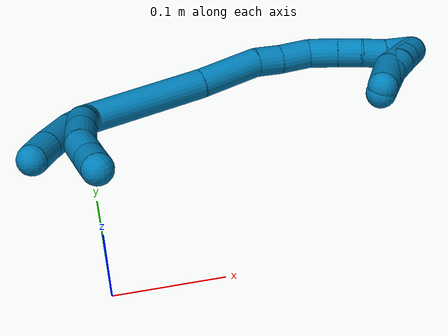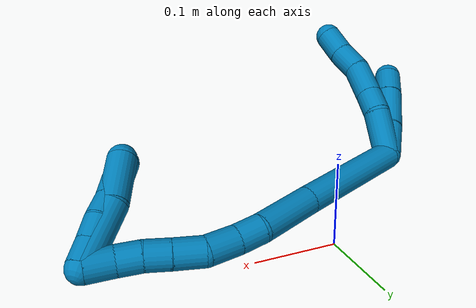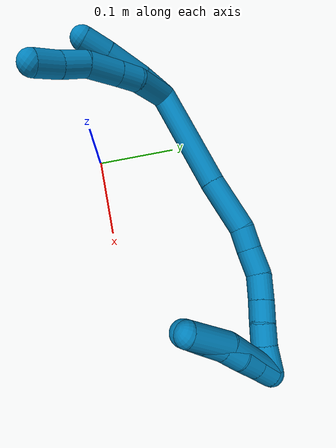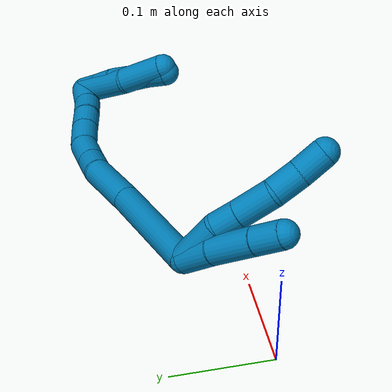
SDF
<sdf version="1.7">
 <world name="default">
  <model name="photoneo_s_sensor">
   <static>1</static>
   <pose>0 0 2 1.57079 1.57079 3.14159</pose>
   <link name="link">
    <inertial><mass>0.1</mass></inertial>
    <sensor name="sensor" type="depth">
     <update_rate>30</update_rate>
     <camera>
      <horizontal_fov>1.22</horizontal_fov>
      <image><width>1920</width><height>1200</height><format>B8G8R8</format></image>
      <clip><near>0.1</near><far>4</far></clip>
      <depth_camera><output>points</output></depth_camera>
     </camera>
     <plugin name="camera_plugin" filename="libgazebo_ros_depth_camera.so">
      <baseline>0.2</baseline>
      <alwaysOn>1</alwaysOn>
      <updateRate>0.0</updateRate>
      <cameraName>camera_ir</cameraName>
      <imageTopicName>/camera/color/image_raw</imageTopicName>
      <cameraInfoTopicName>/camera/color/camera_info</cameraInfoTopicName>
      <depthImageTopicName>/camera/depth/image_raw</depthImageTopicName>
      <depthImageCameraInfoTopicName>/camera/depth/camera_info</depthImageCameraInfoTopicName>
      <pointCloudTopicName>/camera/depth/points</pointCloudTopicName>
      <frameName>fr_optical</frameName>
      <pointCloudCutoff>0.1</pointCloudCutoff>
      <pointCloudCutoffMax>2.0</pointCloudCutoffMax>
      <distortionK1>0</distortionK1>
      <distortionK2>0</distortionK2>
      <distortionK3>0</distortionK3>
      <distortionT1>0</distortionT1>
      <distortionT2>0</distortionT2>
      <CxPrime>0</CxPrime>
      <Cx>0</Cx>
      <Cy>0</Cy>
      <focalLength>0</focalLength>
      <hackBaseline>0</hackBaseline>
     </plugin>
    </sensor>
   </link>
  </model>
  <model name="bin">
   <static>1</static>
   <link name="bottom">
    <collision name="collision-bottom">
     <pose>0 0 -0.01 0 -0 0</pose>
     <geometry><box><size>0.8 0.6 0.02</size></box></geometry>
     <surface>
      <friction><ode><mu>100</mu><mu2>100</mu2></ode></friction>
      <contact><collide_bitmask>65535</collide_bitmask></contact>
     </surface>
    </collision>
   </link>
   <link name="west_wall">
    <collision name="collision-west_wall">
     <pose>-0.41 0 0.1 0 -0 0</pose>
     <geometry><box><size>0.02 0.6 0.2</size></box></geometry>
     <surface>
      <friction><ode><mu>100</mu><mu2>100</mu2></ode></friction>
      <contact><collide_bitmask>65535</collide_bitmask></contact>
     </surface>
    </collision>
   </link>
   <link name="east_wall">
    <collision name="collision-east_wall">
     <pose>0.41 0 0.1 0 -0 0</pose>
     <geometry><box><size>0.02 0.6 0.2</size></box></geometry>
     <surface>
      <friction><ode><mu>100</mu><mu2>100</mu2></ode></friction>
      <contact><collide_bitmask>65535</collide_bitmask></contact>
     </surface>
    </collision>
   </link>
   <link name="south_wall">
    <collision name="collision-south_wall">
     <pose>0 -0.31 0.1 0 -0 0</pose>
     <geometry><box><size>0.8 0.02 0.2</size></box></geometry>
     <surface>
      <friction><ode><mu>100</mu><mu2>100</mu2></ode></friction>
      <contact><collide_bitmask>65535</collide_bitmask></contact>
     </surface>
    </collision>
   </link>
   <link name="north_wall">
    <collision name="collision-north_wall">
     <pose>0 0.31 0.1 0 -0 0</pose>
     <geometry><box><size>0.8 0.02 0.2</size></box></geometry>
     <surface>
      <friction><ode><mu>100</mu><mu2>100</mu2></ode></friction>
      <contact><collide_bitmask>65535</collide_bitmask></contact>
     </surface>
    </collision>
   </link>
  </model>
  <model name="9">
   <static>0</static>
   <link name="9">
    <collision name="collision-cylinder-e_1_2_8">
     <pose>0.00743 0.008775 0.017844 -0.457054 0.357597 -0.084022</pose>
     <geometry><cylinder><radius>0.0125</radius><length>0.042456</length></cylinder></geometry>
     <surface>
      <friction><ode><mu>1.16</mu><mu2>1.16</mu2><slip1>0</slip1><slip2>0</slip2></ode></friction>
      <contact><ode><kp>1e+06</kp><kd>1</kd><max_vel>0</max_vel><min_depth>0.001</min_depth></ode></contact>
     </surface>
    </collision>
    <visual name="visual-cylinder-e_1_2_8">
     <pose>0.00743 0.008775 0.017844 -0.457054 0.357597 -0.084022</pose>
     <geometry><cylinder><radius>0.0125</radius><length>0.042456</length></cylinder></geometry>
     <material><ambient>0 0.490196 0.709804 1</ambient></material>
    </visual>
    <collision name="collision-cylinder-e_2_8_9">
     <pose>0.019955 0.019185 0.045369 -0.167188 0.478649 -0.040884</pose>
     <geometry><cylinder><radius>0.0125</radius><length>0.022121</length></cylinder></geometry>
     <surface>
      <friction><ode><mu>1.16</mu><mu2>1.16</mu2><slip1>0</slip1><slip2>0</slip2></ode></friction>
      <contact><ode><kp>1e+06</kp><kd>1</kd><max_vel>0</max_vel><min_depth>0.001</min_depth></ode></contact>
     </surface>
    </collision>
    <visual name="visual-cylinder-e_2_8_9">
     <pose>0.019955 0.019185 0.045369 -0.167188 0.478649 -0.040884</pose>
     <geometry><cylinder><radius>0.0125</radius><length>0.022121</length></cylinder></geometry>
     <material><ambient>0 0.490196 0.709804 1</ambient></material>
    </visual>
    <collision name="collision-cylinder-e_3_9_10">
     <pose>0.033194 0.023503 0.069431 -0.184572 0.50799 -0.048042</pose>
     <geometry><cylinder><radius>0.0125</radius><length>0.033487</length></cylinder></geometry>
     <surface>
      <friction><ode><mu>1.16</mu><mu2>1.16</mu2><slip1>0</slip1><slip2>0</slip2></ode></friction>
      <contact><ode><kp>1e+06</kp><kd>1</kd><max_vel>0</max_vel><min_depth>0.001</min_depth></ode></contact>
     </surface>
    </collision>
    <visual name="visual-cylinder-e_3_9_10">
     <pose>0.033194 0.023503 0.069431 -0.184572 0.50799 -0.048042</pose>
     <geometry><cylinder><radius>0.0125</radius><length>0.033487</length></cylinder></geometry>
     <material><ambient>0 0.490196 0.709804 1</ambient></material>
    </visual>
    <collision name="collision-cylinder-e_4_10_11">
     <pose>0.05071 0.027811 0.092692 -0.180699 0.804069 -0.077004</pose>
     <geometry><cylinder><radius>0.0125</radius><length>0.026024</length></cylinder></geometry>
     <surface>
      <friction><ode><mu>1.16</mu><mu2>1.16</mu2><slip1>0</slip1><slip2>0</slip2></ode></friction>
      <contact><ode><kp>1e+06</kp><kd>1</kd><max_vel>0</max_vel><min_depth>0.001</min_depth></ode></contact>
     </surface>
    </collision>
    <visual name="visual-cylinder-e_4_10_11">
     <pose>0.05071 0.027811 0.092692 -0.180699 0.804069 -0.077004</pose>
     <geometry><cylinder><radius>0.0125</radius><length>0.026024</length></cylinder></geometry>
     <material><ambient>0 0.490196 0.709804 1</ambient></material>
    </visual>
    <collision name="collision-cylinder-e_5_11_6">
     <pose>0.068559 0.032361 0.110921 -0.303541 0.713375 -0.11386</pose>
     <geometry><cylinder><radius>0.0125</radius><length>0.025911</length></cylinder></geometry>
     <surface>
      <friction><ode><mu>1.16</mu><mu2>1.16</mu2><slip1>0</slip1><slip2>0</slip2></ode></friction>
      <contact><ode><kp>1e+06</kp><kd>1</kd><max_vel>0</max_vel><min_depth>0.001</min_depth></ode></contact>
     </surface>
    </collision>
    <visual name="visual-cylinder-e_5_11_6">
     <pose>0.068559 0.032361 0.110921 -0.303541 0.713375 -0.11386</pose>
     <geometry><cylinder><radius>0.0125</radius><length>0.025911</length></cylinder></geometry>
     <material><ambient>0 0.490196 0.709804 1</ambient></material>
    </visual>
    <collision name="collision-cylinder-e_1_2_12">
     <pose>0.001199 0.001834 0.015868 -0.115086 0.074912 -0.004317</pose>
     <geometry><cylinder><radius>0.0125</radius><length>0.032037</length></cylinder></geometry>
     <surface>
      <friction><ode><mu>1.16</mu><mu2>1.16</mu2><slip1>0</slip1><slip2>0</slip2></ode></friction>
      <contact><ode><kp>1e+06</kp><kd>1</kd><max_vel>0</max_vel><min_depth>0.001</min_depth></ode></contact>
     </surface>
    </collision>
    <visual name="visual-cylinder-e_1_2_12">
     <pose>0.001199 0.001834 0.015868 -0.115086 0.074912 -0.004317</pose>
     <geometry><cylinder><radius>0.0125</radius><length>0.032037</length></cylinder></geometry>
     <material><ambient>0 0.490196 0.709804 1</ambient></material>
    </visual>
    <collision name="collision-cylinder-e_2_12_13">
     <pose>0.004975 0.004442 0.052359 -0.037494 0.124249 -0.002333</pose>
     <geometry><cylinder><radius>0.0125</radius><length>0.041597</length></cylinder></geometry>
     <surface>
      <friction><ode><mu>1.16</mu><mu2>1.16</mu2><slip1>0</slip1><slip2>0</slip2></ode></friction>
      <contact><ode><kp>1e+06</kp><kd>1</kd><max_vel>0</max_vel><min_depth>0.001</min_depth></ode></contact>
     </surface>
    </collision>
    <visual name="visual-cylinder-e_2_12_13">
     <pose>0.004975 0.004442 0.052359 -0.037494 0.124249 -0.002333</pose>
     <geometry><cylinder><radius>0.0125</radius><length>0.041597</length></cylinder></geometry>
     <material><ambient>0 0.490196 0.709804 1</ambient></material>
    </visual>
    <collision name="collision-cylinder-e_3_13_5">
     <pose>0.009792 0.005307 0.085974 -0.006983 0.170711 -0.000597</pose>
     <geometry><cylinder><radius>0.0125</radius><length>0.026366</length></cylinder></geometry>
     <surface>
      <friction><ode><mu>1.16</mu><mu2>1.16</mu2><slip1>0</slip1><slip2>0</slip2></ode></friction>
      <contact><ode><kp>1e+06</kp><kd>1</kd><max_vel>0</max_vel><min_depth>0.001</min_depth></ode></contact>
     </surface>
    </collision>
    <visual name="visual-cylinder-e_3_13_5">
     <pose>0.009792 0.005307 0.085974 -0.006983 0.170711 -0.000597</pose>
     <geometry><cylinder><radius>0.0125</radius><length>0.026366</length></cylinder></geometry>
     <material><ambient>0 0.490196 0.709804 1</ambient></material>
    </visual>
    <collision name="collision-cylinder-e_1_2_14">
     <pose>0.028528 0.015155 -0.041811 -2.79385 0.570353 -2.06205</pose>
     <geometry><cylinder><radius>0.0125</radius><length>0.105673</length></cylinder></geometry>
     <surface>
      <friction><ode><mu>1.16</mu><mu2>1.16</mu2><slip1>0</slip1><slip2>0</slip2></ode></friction>
      <contact><ode><kp>1e+06</kp><kd>1</kd><max_vel>0</max_vel><min_depth>0.001</min_depth></ode></contact>
     </surface>
    </collision>
    <visual name="visual-cylinder-e_1_2_14">
     <pose>0.028528 0.015155 -0.041811 -2.79385 0.570353 -2.06205</pose>
     <geometry><cylinder><radius>0.0125</radius><length>0.105673</length></cylinder></geometry>
     <material><ambient>0 0.490196 0.709804 1</ambient></material>
    </visual>
    <collision name="collision-cylinder-e_2_14_15">
     <pose>0.070573 0.039222 -0.105692 -2.75782 0.516475 -1.87326</pose>
     <geometry><cylinder><radius>0.0125</radius><length>0.054744</length></cylinder></geometry>
     <surface>
      <friction><ode><mu>1.16</mu><mu2>1.16</mu2><slip1>0</slip1><slip2>0</slip2></ode></friction>
      <contact><ode><kp>1e+06</kp><kd>1</kd><max_vel>0</max_vel><min_depth>0.001</min_depth></ode></contact>
     </surface>
    </collision>
    <visual name="visual-cylinder-e_2_14_15">
     <pose>0.070573 0.039222 -0.105692 -2.75782 0.516475 -1.87326</pose>
     <geometry><cylinder><radius>0.0125</radius><length>0.054744</length></cylinder></geometry>
     <material><ambient>0 0.490196 0.709804 1</ambient></material>
    </visual>
    <collision name="collision-cylinder-e_3_15_16">
     <pose>0.091662 0.050205 -0.135766 -2.88839 0.741619 -2.50884</pose>
     <geometry><cylinder><radius>0.0125</radius><length>0.022421</length></cylinder></geometry>
     <surface>
      <friction><ode><mu>1.16</mu><mu2>1.16</mu2><slip1>0</slip1><slip2>0</slip2></ode></friction>
      <contact><ode><kp>1e+06</kp><kd>1</kd><max_vel>0</max_vel><min_depth>0.001</min_depth></ode></contact>
     </surface>
    </collision>
    <visual name="visual-cylinder-e_3_15_16">
     <pose>0.091662 0.050205 -0.135766 -2.88839 0.741619 -2.50884</pose>
     <geometry><cylinder><radius>0.0125</radius><length>0.022421</length></cylinder></geometry>
     <material><ambient>0 0.490196 0.709804 1</ambient></material>
    </visual>
    <collision name="collision-cylinder-e_4_16_17">
     <pose>0.108263 0.056148 -0.152874 -2.73946 0.739612 -2.17345</pose>
     <geometry><cylinder><radius>0.0125</radius><length>0.02679</length></cylinder></geometry>
     <surface>
      <friction><ode><mu>1.16</mu><mu2>1.16</mu2><slip1>0</slip1><slip2>0</slip2></ode></friction>
      <contact><ode><kp>1e+06</kp><kd>1</kd><max_vel>0</max_vel><min_depth>0.001</min_depth></ode></contact>
     </surface>
    </collision>
    <visual name="visual-cylinder-e_4_16_17">
     <pose>0.108263 0.056148 -0.152874 -2.73946 0.739612 -2.17345</pose>
     <geometry><cylinder><radius>0.0125</radius><length>0.02679</length></cylinder></geometry>
     <material><ambient>0 0.490196 0.709804 1</ambient></material>
    </visual>
    <collision name="collision-cylinder-e_5_17_18">
     <pose>0.128356 0.063347 -0.167223 -2.57635 1.05949 -2.22085</pose>
     <geometry><cylinder><radius>0.0125</radius><length>0.025376</length></cylinder></geometry>
     <surface>
      <friction><ode><mu>1.16</mu><mu2>1.16</mu2><slip1>0</slip1><slip2>0</slip2></ode></friction>
      <contact><ode><kp>1e+06</kp><kd>1</kd><max_vel>0</max_vel><min_depth>0.001</min_depth></ode></contact>
     </surface>
    </collision>
    <visual name="visual-cylinder-e_5_17_18">
     <pose>0.128356 0.063347 -0.167223 -2.57635 1.05949 -2.22085</pose>
     <geometry><cylinder><radius>0.0125</radius><length>0.025376</length></cylinder></geometry>
     <material><ambient>0 0.490196 0.709804 1</ambient></material>
    </visual>
    <collision name="collision-cylinder-e_6_18_19">
     <pose>0.148684 0.069237 -0.176383 -2.56179 1.10272 -2.23834</pose>
     <geometry><cylinder><radius>0.0125</radius><length>0.020757</length></cylinder></geometry>
     <surface>
      <friction><ode><mu>1.16</mu><mu2>1.16</mu2><slip1>0</slip1><slip2>0</slip2></ode></friction>
      <contact><ode><kp>1e+06</kp><kd>1</kd><max_vel>0</max_vel><min_depth>0.001</min_depth></ode></contact>
     </surface>
    </collision>
    <visual name="visual-cylinder-e_6_18_19">
     <pose>0.148684 0.069237 -0.176383 -2.56179 1.10272 -2.23834</pose>
     <geometry><cylinder><radius>0.0125</radius><length>0.020757</length></cylinder></geometry>
     <material><ambient>0 0.490196 0.709804 1</ambient></material>
    </visual>
    <collision name="collision-cylinder-e_7_19_20">
     <pose>0.16674 0.073552 -0.185103 -2.79221 1.04428 -2.54636</pose>
     <geometry><cylinder><radius>0.0125</radius><length>0.020343</length></cylinder></geometry>
     <surface>
      <friction><ode><mu>1.16</mu><mu2>1.16</mu2><slip1>0</slip1><slip2>0</slip2></ode></friction>
      <contact><ode><kp>1e+06</kp><kd>1</kd><max_vel>0</max_vel><min_depth>0.001</min_depth></ode></contact>
     </surface>
    </collision>
    <visual name="visual-cylinder-e_7_19_20">
     <pose>0.16674 0.073552 -0.185103 -2.79221 1.04428 -2.54636</pose>
     <geometry><cylinder><radius>0.0125</radius><length>0.020343</length></cylinder></geometry>
     <material><ambient>0 0.490196 0.709804 1</ambient></material>
    </visual>
    <collision name="collision-cylinder-e_8_20_1">
     <pose>0.184993 0.078618 -0.196408 -2.66997 0.913585 -2.23212</pose>
     <geometry><cylinder><radius>0.0125</radius><length>0.023896</length></cylinder></geometry>
     <surface>
      <friction><ode><mu>1.16</mu><mu2>1.16</mu2><slip1>0</slip1><slip2>0</slip2></ode></friction>
      <contact><ode><kp>1e+06</kp><kd>1</kd><max_vel>0</max_vel><min_depth>0.001</min_depth></ode></contact>
     </surface>
    </collision>
    <visual name="visual-cylinder-e_8_20_1">
     <pose>0.184993 0.078618 -0.196408 -2.66997 0.913585 -2.23212</pose>
     <geometry><cylinder><radius>0.0125</radius><length>0.023896</length></cylinder></geometry>
     <material><ambient>0 0.490196 0.709804 1</ambient></material>
    </visual>
    <collision name="collision-cylinder-e_1_1_21">
     <pose>0.194921 0.08221 -0.192925 -0.027553 0.046885 -0.000646</pose>
     <geometry><cylinder><radius>0.0125</radius><length>0.02</length></cylinder></geometry>
     <surface>
      <friction><ode><mu>1.16</mu><mu2>1.16</mu2><slip1>0</slip1><slip2>0</slip2></ode></friction>
      <contact><ode><kp>1e+06</kp><kd>1</kd><max_vel>0</max_vel><min_depth>0.001</min_depth></ode></contact>
     </surface>
    </collision>
    <visual name="visual-cylinder-e_1_1_21">
     <pose>0.194921 0.08221 -0.192925 -0.027553 0.046885 -0.000646</pose>
     <geometry><cylinder><radius>0.0125</radius><length>0.02</length></cylinder></geometry>
     <material><ambient>0 0.490196 0.709804 1</ambient></material>
    </visual>
    <collision name="collision-cylinder-e_2_21_22">
     <pose>0.196164 0.083034 -0.172985 -0.055079 0.07755 -0.002137</pose>
     <geometry><cylinder><radius>0.0125</radius><length>0.02</length></cylinder></geometry>
     <surface>
      <friction><ode><mu>1.16</mu><mu2>1.16</mu2><slip1>0</slip1><slip2>0</slip2></ode></friction>
      <contact><ode><kp>1e+06</kp><kd>1</kd><max_vel>0</max_vel><min_depth>0.001</min_depth></ode></contact>
     </surface>
    </collision>
    <visual name="visual-cylinder-e_2_21_22">
     <pose>0.196164 0.083034 -0.172985 -0.055079 0.07755 -0.002137</pose>
     <geometry><cylinder><radius>0.0125</radius><length>0.02</length></cylinder></geometry>
     <material><ambient>0 0.490196 0.709804 1</ambient></material>
    </visual>
    <collision name="collision-cylinder-e_3_22_23">
     <pose>0.197265 0.082721 -0.153073 0.086311 0.032585 0.001407</pose>
     <geometry><cylinder><radius>0.0125</radius><length>0.02</length></cylinder></geometry>
     <surface>
      <friction><ode><mu>1.16</mu><mu2>1.16</mu2><slip1>0</slip1><slip2>0</slip2></ode></friction>
      <contact><ode><kp>1e+06</kp><kd>1</kd><max_vel>0</max_vel><min_depth>0.001</min_depth></ode></contact>
     </surface>
    </collision>
    <visual name="visual-cylinder-e_3_22_23">
     <pose>0.197265 0.082721 -0.153073 0.086311 0.032585 0.001407</pose>
     <geometry><cylinder><radius>0.0125</radius><length>0.02</length></cylinder></geometry>
     <material><ambient>0 0.490196 0.709804 1</ambient></material>
    </visual>
    <collision name="collision-cylinder-e_4_23_24">
     <pose>0.199368 0.081056 -0.133307 0.081707 0.178659 0.007322</pose>
     <geometry><cylinder><radius>0.0125</radius><length>0.02</length></cylinder></geometry>
     <surface>
      <friction><ode><mu>1.16</mu><mu2>1.16</mu2><slip1>0</slip1><slip2>0</slip2></ode></friction>
      <contact><ode><kp>1e+06</kp><kd>1</kd><max_vel>0</max_vel><min_depth>0.001</min_depth></ode></contact>
     </surface>
    </collision>
    <visual name="visual-cylinder-e_4_23_24">
     <pose>0.199368 0.081056 -0.133307 0.081707 0.178659 0.007322</pose>
     <geometry><cylinder><radius>0.0125</radius><length>0.02</length></cylinder></geometry>
     <material><ambient>0 0.490196 0.709804 1</ambient></material>
    </visual>
    <collision name="collision-cylinder-e_5_24_4">
     <pose>0.202789 0.07859 -0.113777 0.169422 0.16517 0.014057</pose>
     <geometry><cylinder><radius>0.0125</radius><length>0.02</length></cylinder></geometry>
     <surface>
      <friction><ode><mu>1.16</mu><mu2>1.16</mu2><slip1>0</slip1><slip2>0</slip2></ode></friction>
      <contact><ode><kp>1e+06</kp><kd>1</kd><max_vel>0</max_vel><min_depth>0.001</min_depth></ode></contact>
     </surface>
    </collision>
    <visual name="visual-cylinder-e_5_24_4">
     <pose>0.202789 0.07859 -0.113777 0.169422 0.16517 0.014057</pose>
     <geometry><cylinder><radius>0.0125</radius><length>0.02</length></cylinder></geometry>
     <material><ambient>0 0.490196 0.709804 1</ambient></material>
    </visual>
    <collision name="collision-cylinder-e_1_1_25">
     <pose>0.194061 0.082229 -0.17483 -0.01047 -0.013921 7.3e-05</pose>
     <geometry><cylinder><radius>0.0125</radius><length>0.05617</length></cylinder></geometry>
     <surface>
      <friction><ode><mu>1.16</mu><mu2>1.16</mu2><slip1>0</slip1><slip2>0</slip2></ode></friction>
      <contact><ode><kp>1e+06</kp><kd>1</kd><max_vel>0</max_vel><min_depth>0.001</min_depth></ode></contact>
     </surface>
    </collision>
    <visual name="visual-cylinder-e_1_1_25">
     <pose>0.194061 0.082229 -0.17483 -0.01047 -0.013921 7.3e-05</pose>
     <geometry><cylinder><radius>0.0125</radius><length>0.05617</length></cylinder></geometry>
     <material><ambient>0 0.490196 0.709804 1</ambient></material>
    </visual>
    <collision name="collision-cylinder-e_2_25_3">
     <pose>0.198949 0.08268 -0.12548 -0.007386 0.24325 -0.000903</pose>
     <geometry><cylinder><radius>0.0125</radius><length>0.04383</length></cylinder></geometry>
     <surface>
      <friction><ode><mu>1.16</mu><mu2>1.16</mu2><slip1>0</slip1><slip2>0</slip2></ode></friction>
      <contact><ode><kp>1e+06</kp><kd>1</kd><max_vel>0</max_vel><min_depth>0.001</min_depth></ode></contact>
     </surface>
    </collision>
    <visual name="visual-cylinder-e_2_25_3">
     <pose>0.198949 0.08268 -0.12548 -0.007386 0.24325 -0.000903</pose>
     <geometry><cylinder><radius>0.0125</radius><length>0.04383</length></cylinder></geometry>
     <material><ambient>0 0.490196 0.709804 1</ambient></material>
    </visual>
    <collision name="collision-sphere-3">
     <pose>0.204227 0.082837 -0.10421 0 -0 0</pose>
     <geometry><sphere><radius>0.0125</radius></sphere></geometry>
     <surface>
      <friction><ode><mu>1.16</mu><mu2>1.16</mu2><slip1>0</slip1><slip2>0</slip2></ode></friction>
      <contact><ode><kp>1e+06</kp><kd>1</kd><max_vel>0</max_vel><min_depth>0.001</min_depth></ode></contact>
     </surface>
    </collision>
    <visual name="visual-sphere-3">
     <pose>0.204227 0.082837 -0.10421 0 -0 0</pose>
     <geometry><sphere><radius>0.0125</radius></sphere></geometry>
     <material><ambient>0 0.490196 0.709804 1</ambient></material>
    </visual>
    <collision name="collision-sphere-25">
     <pose>0.19367 0.082523 -0.146749 0 -0 0</pose>
     <geometry><sphere><radius>0.0125</radius></sphere></geometry>
     <surface>
      <friction><ode><mu>1.16</mu><mu2>1.16</mu2><slip1>0</slip1><slip2>0</slip2></ode></friction>
      <contact><ode><kp>1e+06</kp><kd>1</kd><max_vel>0</max_vel><min_depth>0.001</min_depth></ode></contact>
     </surface>
    </collision>
    <visual name="visual-sphere-25">
     <pose>0.19367 0.082523 -0.146749 0 -0 0</pose>
     <geometry><sphere><radius>0.0125</radius></sphere></geometry>
     <material><ambient>0 0.490196 0.709804 1</ambient></material>
    </visual>
    <collision name="collision-sphere-4">
     <pose>0.204433 0.076927 -0.104054 0 -0 0</pose>
     <geometry><sphere><radius>0.0125</radius></sphere></geometry>
     <surface>
      <friction><ode><mu>1.16</mu><mu2>1.16</mu2><slip1>0</slip1><slip2>0</slip2></ode></friction>
      <contact><ode><kp>1e+06</kp><kd>1</kd><max_vel>0</max_vel><min_depth>0.001</min_depth></ode></contact>
     </surface>
    </collision>
    <visual name="visual-sphere-4">
     <pose>0.204433 0.076927 -0.104054 0 -0 0</pose>
     <geometry><sphere><radius>0.0125</radius></sphere></geometry>
     <material><ambient>0 0.490196 0.709804 1</ambient></material>
    </visual>
    <collision name="collision-sphere-24">
     <pose>0.201145 0.080253 -0.123499 0 -0 0</pose>
     <geometry><sphere><radius>0.0125</radius></sphere></geometry>
     <surface>
      <friction><ode><mu>1.16</mu><mu2>1.16</mu2><slip1>0</slip1><slip2>0</slip2></ode></friction>
      <contact><ode><kp>1e+06</kp><kd>1</kd><max_vel>0</max_vel><min_depth>0.001</min_depth></ode></contact>
     </surface>
    </collision>
    <visual name="visual-sphere-24">
     <pose>0.201145 0.080253 -0.123499 0 -0 0</pose>
     <geometry><sphere><radius>0.0125</radius></sphere></geometry>
     <material><ambient>0 0.490196 0.709804 1</ambient></material>
    </visual>
    <collision name="collision-sphere-23">
     <pose>0.197591 0.081859 -0.143115 0 -0 0</pose>
     <geometry><sphere><radius>0.0125</radius></sphere></geometry>
     <surface>
      <friction><ode><mu>1.16</mu><mu2>1.16</mu2><slip1>0</slip1><slip2>0</slip2></ode></friction>
      <contact><ode><kp>1e+06</kp><kd>1</kd><max_vel>0</max_vel><min_depth>0.001</min_depth></ode></contact>
     </surface>
    </collision>
    <visual name="visual-sphere-23">
     <pose>0.197591 0.081859 -0.143115 0 -0 0</pose>
     <geometry><sphere><radius>0.0125</radius></sphere></geometry>
     <material><ambient>0 0.490196 0.709804 1</ambient></material>
    </visual>
    <collision name="collision-sphere-22">
     <pose>0.196939 0.083583 -0.16303 0 -0 0</pose>
     <geometry><sphere><radius>0.0125</radius></sphere></geometry>
     <surface>
      <friction><ode><mu>1.16</mu><mu2>1.16</mu2><slip1>0</slip1><slip2>0</slip2></ode></friction>
      <contact><ode><kp>1e+06</kp><kd>1</kd><max_vel>0</max_vel><min_depth>0.001</min_depth></ode></contact>
     </surface>
    </collision>
    <visual name="visual-sphere-22">
     <pose>0.196939 0.083583 -0.16303 0 -0 0</pose>
     <geometry><sphere><radius>0.0125</radius></sphere></geometry>
     <material><ambient>0 0.490196 0.709804 1</ambient></material>
    </visual>
    <collision name="collision-sphere-21">
     <pose>0.19539 0.082485 -0.18294 0 -0 0</pose>
     <geometry><sphere><radius>0.0125</radius></sphere></geometry>
     <surface>
      <friction><ode><mu>1.16</mu><mu2>1.16</mu2><slip1>0</slip1><slip2>0</slip2></ode></friction>
      <contact><ode><kp>1e+06</kp><kd>1</kd><max_vel>0</max_vel><min_depth>0.001</min_depth></ode></contact>
     </surface>
    </collision>
    <visual name="visual-sphere-21">
     <pose>0.19539 0.082485 -0.18294 0 -0 0</pose>
     <geometry><sphere><radius>0.0125</radius></sphere></geometry>
     <material><ambient>0 0.490196 0.709804 1</ambient></material>
    </visual>
    <collision name="collision-sphere-1">
     <pose>0.194452 0.081935 -0.20291 0 -0 0</pose>
     <geometry><sphere><radius>0.0125</radius></sphere></geometry>
     <surface>
      <friction><ode><mu>1.16</mu><mu2>1.16</mu2><slip1>0</slip1><slip2>0</slip2></ode></friction>
      <contact><ode><kp>1e+06</kp><kd>1</kd><max_vel>0</max_vel><min_depth>0.001</min_depth></ode></contact>
     </surface>
    </collision>
    <visual name="visual-sphere-1">
     <pose>0.194452 0.081935 -0.20291 0 -0 0</pose>
     <geometry><sphere><radius>0.0125</radius></sphere></geometry>
     <material><ambient>0 0.490196 0.709804 1</ambient></material>
    </visual>
    <collision name="collision-sphere-6">
     <pose>0.077036 0.035289 0.12027 0 -0 0</pose>
     <geometry><sphere><radius>0.0125</radius></sphere></geometry>
     <surface>
      <friction><ode><mu>1.16</mu><mu2>1.16</mu2><slip1>0</slip1><slip2>0</slip2></ode></friction>
      <contact><ode><kp>1e+06</kp><kd>1</kd><max_vel>0</max_vel><min_depth>0.001</min_depth></ode></contact>
     </surface>
    </collision>
    <visual name="visual-sphere-6">
     <pose>0.077036 0.035289 0.12027 0 -0 0</pose>
     <geometry><sphere><radius>0.0125</radius></sphere></geometry>
     <material><ambient>0 0.490196 0.709804 1</ambient></material>
    </visual>
    <collision name="collision-sphere-11">
     <pose>0.060081 0.029433 0.101573 0 -0 0</pose>
     <geometry><sphere><radius>0.0125</radius></sphere></geometry>
     <surface>
      <friction><ode><mu>1.16</mu><mu2>1.16</mu2><slip1>0</slip1><slip2>0</slip2></ode></friction>
      <contact><ode><kp>1e+06</kp><kd>1</kd><max_vel>0</max_vel><min_depth>0.001</min_depth></ode></contact>
     </surface>
    </collision>
    <visual name="visual-sphere-11">
     <pose>0.060081 0.029433 0.101573 0 -0 0</pose>
     <geometry><sphere><radius>0.0125</radius></sphere></geometry>
     <material><ambient>0 0.490196 0.709804 1</ambient></material>
    </visual>
    <collision name="collision-sphere-10">
     <pose>0.041338 0.026188 0.083812 0 -0 0</pose>
     <geometry><sphere><radius>0.0125</radius></sphere></geometry>
     <surface>
      <friction><ode><mu>1.16</mu><mu2>1.16</mu2><slip1>0</slip1><slip2>0</slip2></ode></friction>
      <contact><ode><kp>1e+06</kp><kd>1</kd><max_vel>0</max_vel><min_depth>0.001</min_depth></ode></contact>
     </surface>
    </collision>
    <visual name="visual-sphere-10">
     <pose>0.041338 0.026188 0.083812 0 -0 0</pose>
     <geometry><sphere><radius>0.0125</radius></sphere></geometry>
     <material><ambient>0 0.490196 0.709804 1</ambient></material>
    </visual>
    <collision name="collision-sphere-9">
     <pose>0.025049 0.020818 0.05505 0 -0 0</pose>
     <geometry><sphere><radius>0.0125</radius></sphere></geometry>
     <surface>
      <friction><ode><mu>1.16</mu><mu2>1.16</mu2><slip1>0</slip1><slip2>0</slip2></ode></friction>
      <contact><ode><kp>1e+06</kp><kd>1</kd><max_vel>0</max_vel><min_depth>0.001</min_depth></ode></contact>
     </surface>
    </collision>
    <visual name="visual-sphere-9">
     <pose>0.025049 0.020818 0.05505 0 -0 0</pose>
     <geometry><sphere><radius>0.0125</radius></sphere></geometry>
     <material><ambient>0 0.490196 0.709804 1</ambient></material>
    </visual>
    <collision name="collision-sphere-2">
     <geometry><sphere><radius>0.0125</radius></sphere></geometry>
     <surface>
      <friction><ode><mu>1.16</mu><mu2>1.16</mu2><slip1>0</slip1><slip2>0</slip2></ode></friction>
      <contact><ode><kp>1e+06</kp><kd>1</kd><max_vel>0</max_vel><min_depth>0.001</min_depth></ode></contact>
     </surface>
    </collision>
    <visual name="visual-sphere-2">
     <geometry><sphere><radius>0.0125</radius></sphere></geometry>
     <material><ambient>0 0.490196 0.709804 1</ambient></material>
    </visual>
    <collision name="collision-sphere-19">
     <pose>0.157946 0.071803 -0.1803 0 -0 0</pose>
     <geometry><sphere><radius>0.0125</radius></sphere></geometry>
     <surface>
      <friction><ode><mu>1.16</mu><mu2>1.16</mu2><slip1>0</slip1><slip2>0</slip2></ode></friction>
      <contact><ode><kp>1e+06</kp><kd>1</kd><max_vel>0</max_vel><min_depth>0.001</min_depth></ode></contact>
     </surface>
    </collision>
    <visual name="visual-sphere-19">
     <pose>0.157946 0.071803 -0.1803 0 -0 0</pose>
     <geometry><sphere><radius>0.0125</radius></sphere></geometry>
     <material><ambient>0 0.490196 0.709804 1</ambient></material>
    </visual>
    <collision name="collision-sphere-8">
     <pose>0.014861 0.017551 0.035688 0 -0 0</pose>
     <geometry><sphere><radius>0.0125</radius></sphere></geometry>
     <surface>
      <friction><ode><mu>1.16</mu><mu2>1.16</mu2><slip1>0</slip1><slip2>0</slip2></ode></friction>
      <contact><ode><kp>1e+06</kp><kd>1</kd><max_vel>0</max_vel><min_depth>0.001</min_depth></ode></contact>
     </surface>
    </collision>
    <visual name="visual-sphere-8">
     <pose>0.014861 0.017551 0.035688 0 -0 0</pose>
     <geometry><sphere><radius>0.0125</radius></sphere></geometry>
     <material><ambient>0 0.490196 0.709804 1</ambient></material>
    </visual>
    <collision name="collision-sphere-12">
     <pose>0.002398 0.003669 0.031736 0 -0 0</pose>
     <geometry><sphere><radius>0.0125</radius></sphere></geometry>
     <surface>
      <friction><ode><mu>1.16</mu><mu2>1.16</mu2><slip1>0</slip1><slip2>0</slip2></ode></friction>
      <contact><ode><kp>1e+06</kp><kd>1</kd><max_vel>0</max_vel><min_depth>0.001</min_depth></ode></contact>
     </surface>
    </collision>
    <visual name="visual-sphere-12">
     <pose>0.002398 0.003669 0.031736 0 -0 0</pose>
     <geometry><sphere><radius>0.0125</radius></sphere></geometry>
     <material><ambient>0 0.490196 0.709804 1</ambient></material>
    </visual>
    <collision name="collision-sphere-13">
     <pose>0.007553 0.005216 0.072983 0 -0 0</pose>
     <geometry><sphere><radius>0.0125</radius></sphere></geometry>
     <surface>
      <friction><ode><mu>1.16</mu><mu2>1.16</mu2><slip1>0</slip1><slip2>0</slip2></ode></friction>
      <contact><ode><kp>1e+06</kp><kd>1</kd><max_vel>0</max_vel><min_depth>0.001</min_depth></ode></contact>
     </surface>
    </collision>
    <visual name="visual-sphere-13">
     <pose>0.007553 0.005216 0.072983 0 -0 0</pose>
     <geometry><sphere><radius>0.0125</radius></sphere></geometry>
     <material><ambient>0 0.490196 0.709804 1</ambient></material>
    </visual>
    <collision name="collision-sphere-5">
     <pose>0.012032 0.005397 0.098965 0 -0 0</pose>
     <geometry><sphere><radius>0.0125</radius></sphere></geometry>
     <surface>
      <friction><ode><mu>1.16</mu><mu2>1.16</mu2><slip1>0</slip1><slip2>0</slip2></ode></friction>
      <contact><ode><kp>1e+06</kp><kd>1</kd><max_vel>0</max_vel><min_depth>0.001</min_depth></ode></contact>
     </surface>
    </collision>
    <visual name="visual-sphere-5">
     <pose>0.012032 0.005397 0.098965 0 -0 0</pose>
     <geometry><sphere><radius>0.0125</radius></sphere></geometry>
     <material><ambient>0 0.490196 0.709804 1</ambient></material>
    </visual>
    <collision name="collision-sphere-14">
     <pose>0.057056 0.03031 -0.083622 0 -0 0</pose>
     <geometry><sphere><radius>0.0125</radius></sphere></geometry>
     <surface>
      <friction><ode><mu>1.16</mu><mu2>1.16</mu2><slip1>0</slip1><slip2>0</slip2></ode></friction>
      <contact><ode><kp>1e+06</kp><kd>1</kd><max_vel>0</max_vel><min_depth>0.001</min_depth></ode></contact>
     </surface>
    </collision>
    <visual name="visual-sphere-14">
     <pose>0.057056 0.03031 -0.083622 0 -0 0</pose>
     <geometry><sphere><radius>0.0125</radius></sphere></geometry>
     <material><ambient>0 0.490196 0.709804 1</ambient></material>
    </visual>
    <collision name="collision-sphere-15">
     <pose>0.084089 0.048134 -0.127763 0 -0 0</pose>
     <geometry><sphere><radius>0.0125</radius></sphere></geometry>
     <surface>
      <friction><ode><mu>1.16</mu><mu2>1.16</mu2><slip1>0</slip1><slip2>0</slip2></ode></friction>
      <contact><ode><kp>1e+06</kp><kd>1</kd><max_vel>0</max_vel><min_depth>0.001</min_depth></ode></contact>
     </surface>
    </collision>
    <visual name="visual-sphere-15">
     <pose>0.084089 0.048134 -0.127763 0 -0 0</pose>
     <geometry><sphere><radius>0.0125</radius></sphere></geometry>
     <material><ambient>0 0.490196 0.709804 1</ambient></material>
    </visual>
    <collision name="collision-sphere-16">
     <pose>0.099234 0.052276 -0.143768 0 -0 0</pose>
     <geometry><sphere><radius>0.0125</radius></sphere></geometry>
     <surface>
      <friction><ode><mu>1.16</mu><mu2>1.16</mu2><slip1>0</slip1><slip2>0</slip2></ode></friction>
      <contact><ode><kp>1e+06</kp><kd>1</kd><max_vel>0</max_vel><min_depth>0.001</min_depth></ode></contact>
     </surface>
    </collision>
    <visual name="visual-sphere-16">
     <pose>0.099234 0.052276 -0.143768 0 -0 0</pose>
     <geometry><sphere><radius>0.0125</radius></sphere></geometry>
     <material><ambient>0 0.490196 0.709804 1</ambient></material>
    </visual>
    <collision name="collision-sphere-17">
     <pose>0.117291 0.060021 -0.16198 0 -0 0</pose>
     <geometry><sphere><radius>0.0125</radius></sphere></geometry>
     <surface>
      <friction><ode><mu>1.16</mu><mu2>1.16</mu2><slip1>0</slip1><slip2>0</slip2></ode></friction>
      <contact><ode><kp>1e+06</kp><kd>1</kd><max_vel>0</max_vel><min_depth>0.001</min_depth></ode></contact>
     </surface>
    </collision>
    <visual name="visual-sphere-17">
     <pose>0.117291 0.060021 -0.16198 0 -0 0</pose>
     <geometry><sphere><radius>0.0125</radius></sphere></geometry>
     <material><ambient>0 0.490196 0.709804 1</ambient></material>
    </visual>
    <collision name="collision-sphere-18">
     <pose>0.139422 0.066672 -0.172466 0 -0 0</pose>
     <geometry><sphere><radius>0.0125</radius></sphere></geometry>
     <surface>
      <friction><ode><mu>1.16</mu><mu2>1.16</mu2><slip1>0</slip1><slip2>0</slip2></ode></friction>
      <contact><ode><kp>1e+06</kp><kd>1</kd><max_vel>0</max_vel><min_depth>0.001</min_depth></ode></contact>
     </surface>
    </collision>
    <visual name="visual-sphere-18">
     <pose>0.139422 0.066672 -0.172466 0 -0 0</pose>
     <geometry><sphere><radius>0.0125</radius></sphere></geometry>
     <material><ambient>0 0.490196 0.709804 1</ambient></material>
    </visual>
    <collision name="collision-sphere-20">
     <pose>0.175534 0.075302 -0.189906 0 -0 0</pose>
     <geometry><sphere><radius>0.0125</radius></sphere></geometry>
     <surface>
      <friction><ode><mu>1.16</mu><mu2>1.16</mu2><slip1>0</slip1><slip2>0</slip2></ode></friction>
      <contact><ode><kp>1e+06</kp><kd>1</kd><max_vel>0</max_vel><min_depth>0.001</min_depth></ode></contact>
     </surface>
    </collision>
    <visual name="visual-sphere-20">
     <pose>0.175534 0.075302 -0.189906 0 -0 0</pose>
     <geometry><sphere><radius>0.0125</radius></sphere></geometry>
     <material><ambient>0 0.490196 0.709804 1</ambient></material>
    </visual>
    <inertial>
     <pose>0.094518 0.04363 -0.066697 0 -0 0</pose>
     <mass>0.75</mass>
     <inertia>
      <ixx>-5.8e-05</ixx>
      <ixy>0</ixy>
      <ixz>0</ixz>
      <iyy>5.8e-05</iyy>
      <iyz>0</iyz>
      <izz>-0.000113</izz>
     </inertia>
    </inertial>
   </link>
   <pose>0.000673 0.085637 0.142649 1.05187 -0.018903 -0.699193</pose>
  </model>
 </world>
</sdf>
